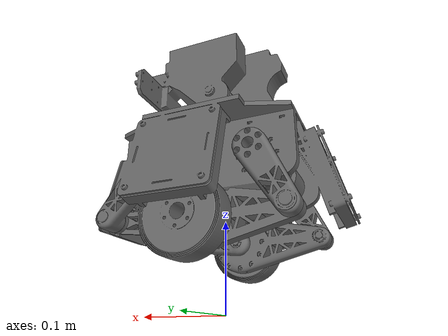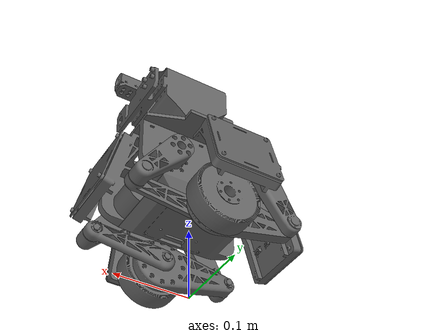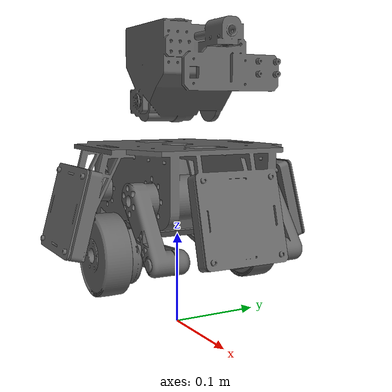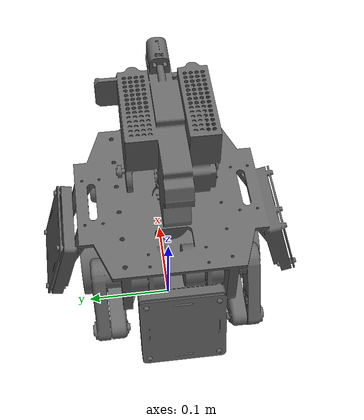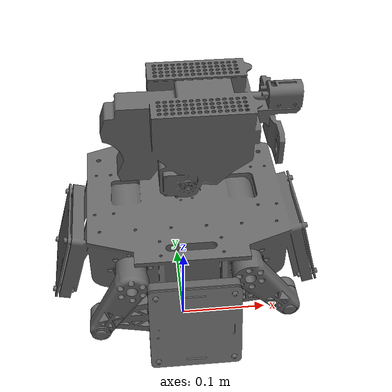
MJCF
<mujoco model="stryon_no3">
    <compiler angle="degree"/>
    <option gravity="0 0 -9.81"/>
    <asset>
        <material name="black" rgba="0.4 0.4 0.4 1"/>
        <mesh name="body" file="body.STL"/>
        <mesh name="injection_unit" file="injection_unit.STL"/>
        <mesh name="left_back_knee" file="left_back_knee.STL"/>
        <mesh name="left_back_leg" file="left_back_leg.STL"/>
        <mesh name="left_front_knee" file="left_front_knee.STL"/>
        <mesh name="left_front_leg" file="left_front_leg.STL"/>
        <mesh name="left_wheel" file="left_wheel.STL"/>
        <mesh name="right_back_knee" file="right_back_knee.STL"/>
        <mesh name="right_back_leg" file="right_back_leg.STL"/>
        <mesh name="right_front_knee" file="right_front_knee.STL"/>
        <mesh name="right_front_leg" file="right_front_leg.STL"/>
        <mesh name="right_wheel" file="right_wheel.STL"/>
    </asset>

    <worldbody>
        <light name="top" pos="0 0 2" mode="trackcom"/>
        <body name="body_link" pos="0 0 0.15">
            <joint name="free_joint" type="free"/>
            <geom type="mesh" material="black" mesh="body" mass="2.54988"/>
            <body name="left_back_knee" pos="0 0 0">
                <joint name="left_back_knee_joint" pos="-0.06 0.0565 0" axis="0 1 0"/>
                <geom type="mesh" material="black" mesh="left_back_knee" mass="0.12383" contype="0" conaffinity="0"/>
                <body name="left_back_leg" pos="0 0 0">
                    <joint name="left_back_leg_joint" pos="-0.09444107 0.0735 -0.06094234" axis="0 1 0"/>
                    <geom type="mesh" material="black" mesh="left_back_leg" mass="0.22612" contype="0" conaffinity="0"/>
                    <body name="left_wheel" pos="0 0 0">
                        <joint name="left_wheel_joint" pos="0.00553793 0.0795 -0.06299145" axis="0 1 0"/>
                        <geom type="mesh" material="black" mesh="left_wheel" mass="0.4178" friction="1.0 0.02 0.002"/>
                    </body>
                </body>
            </body>
            <body name="left_front_knee" pos="0 0 0">
                <joint name="left_front_knee_joint" pos="0.06 0.0565 0" axis="0 1 0"/>
                <geom type="mesh" material="black" mesh="left_front_knee" mass="0.12383" contype="0" conaffinity="0"/>
                <body name="left_front_leg" pos="0 0 0">
                    <joint name="left_front_leg_joint" pos="0.10509065 0.059 -0.05354281" axis="0 1 0"/>
                    <geom type="mesh" material="black" mesh="left_front_leg" mass="0.02437" contype="0" conaffinity="0"/>
                </body>
            </body>
            <body name="right_back_knee" pos="0 0 0">
                <joint name="right_back_knee_joint" pos="-0.06 -0.0565 0" axis="0 1 0"/>
                <geom type="mesh" material="black" mesh="right_back_knee" mass="0.12383" contype="0" conaffinity="0"/>
                <body name="right_back_leg" pos="0 0 0">
                    <joint name="right_back_leg_joint" pos="-0.09444107 -0.0735 -0.06094234" axis="0 1 0"/>
                    <geom type="mesh" material="black" mesh="right_back_leg" mass="0.19241" contype="0" conaffinity="0"/>
                    <body name="right_wheel" pos="0 0 0">
                        <joint name="right_wheel_joint" pos="0.00553793 -0.0795 -0.06299145" axis="0 1 0"/>
                        <geom type="mesh" material="black" mesh="right_wheel" mass="0.4178" friction="1.0 0.02 0.002"/>
                    </body>
                </body>
            </body>
            <body name="right_front_knee" pos="0 0 0">
                <joint name="right_front_knee_joint" pos="0.06 -0.0565 0" axis="0 1 0"/>
                <geom type="mesh" material="black" mesh="right_front_knee" mass="0.12383" contype="0" conaffinity="0"/>
                <body name="right_front_leg" pos="0 0 0">
                    <joint name="right_front_leg_joint" pos="0.10509065 -0.059 -0.05354281" axis="0 1 0"/>
                    <geom type="mesh" material="black" mesh="right_front_leg" mass="0.02437" contype="0" conaffinity="0"/>
                </body>
            </body>
            <body name="injection_unit" pos="0 0 0">
                <geom type="mesh" material="black" mesh="injection_unit" mass="0.37105"/>
            </body>
        </body>
    </worldbody>
    <equality>
        <connect name="left_closed_loop" active="true" body1="left_back_leg" body2="left_front_leg" anchor="0.00553793 0 -0.06299145"/>
        <connect name="right_closed_loop" active="true" body1="right_back_leg" body2="right_front_leg" anchor="0.00553793 0 -0.06299145"/>
    </equality>
</mujoco>
